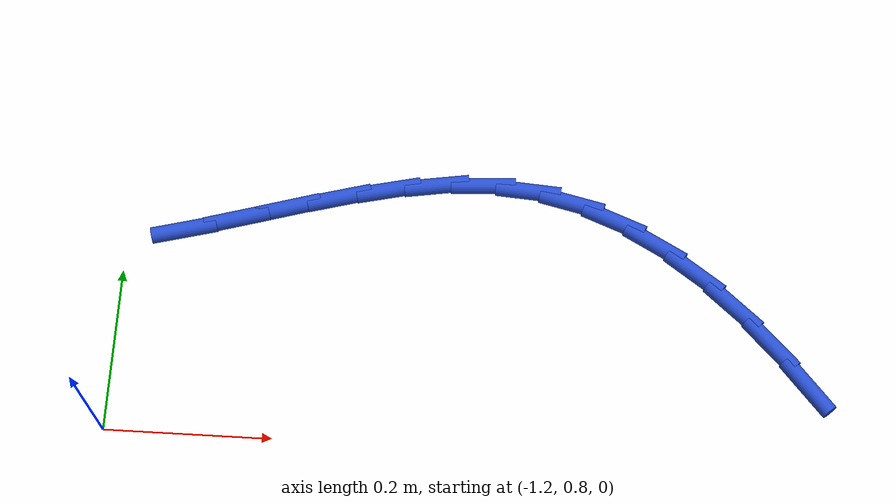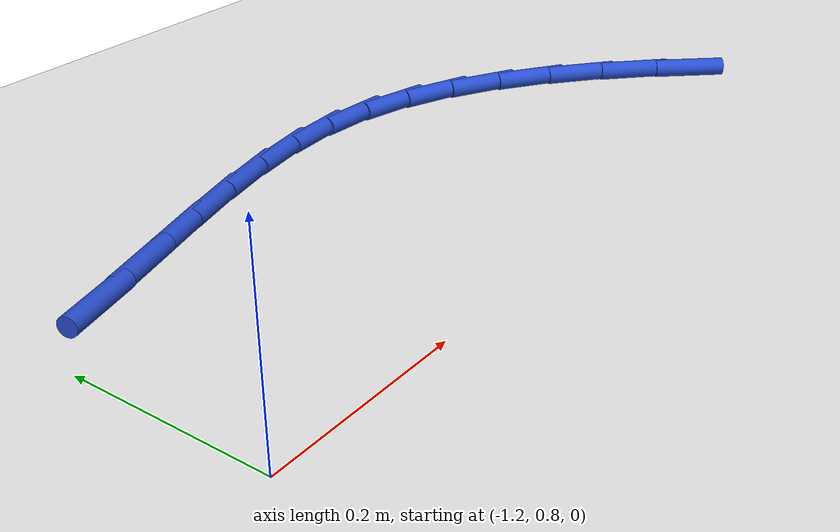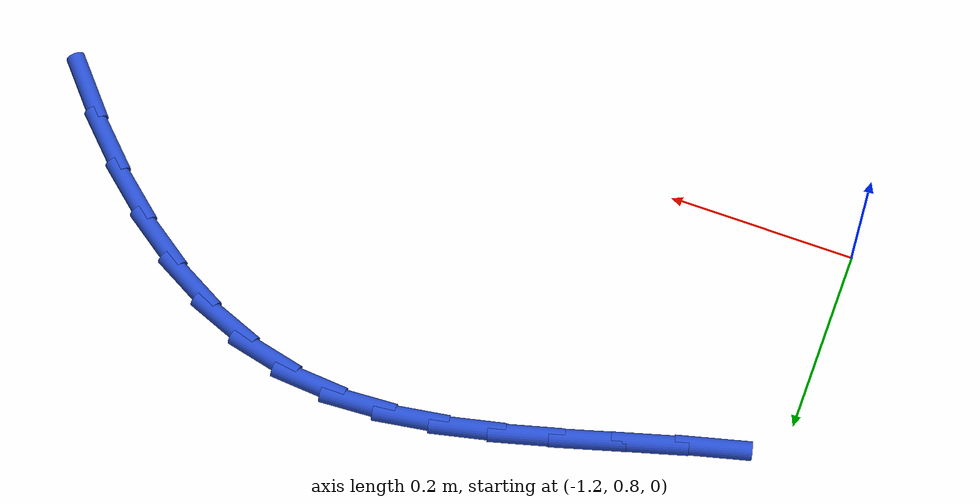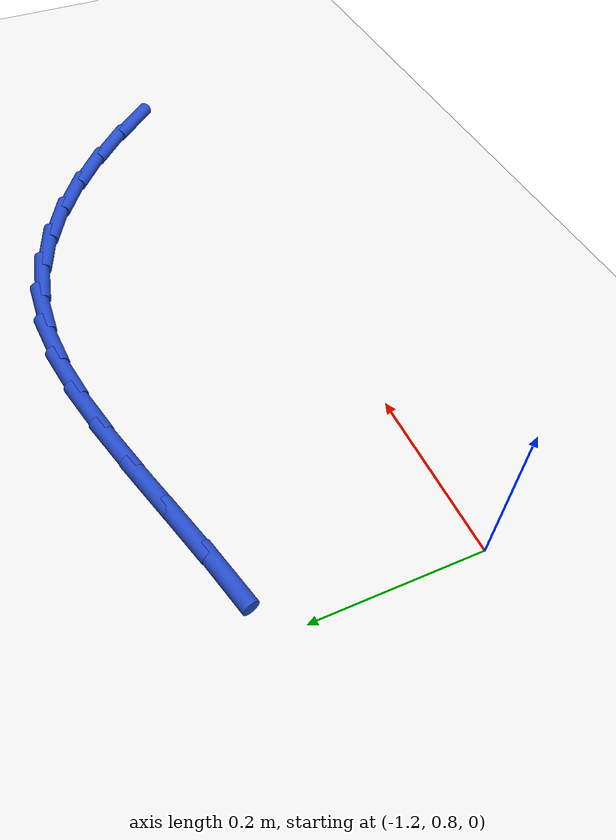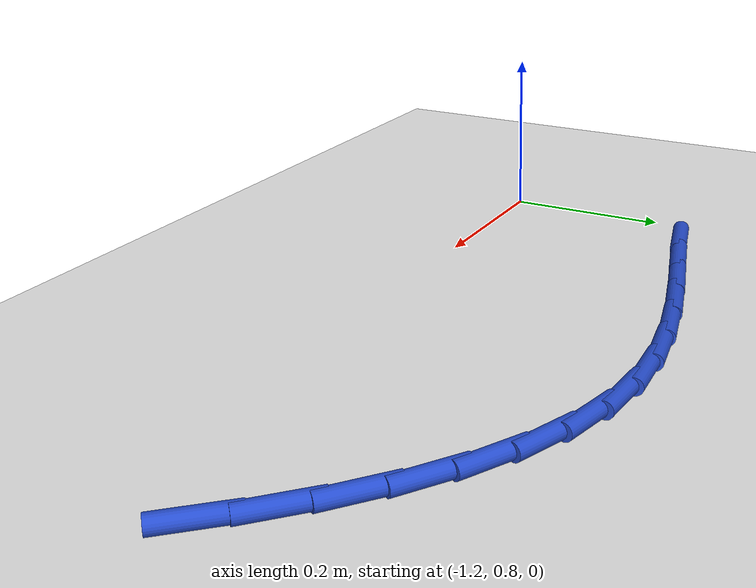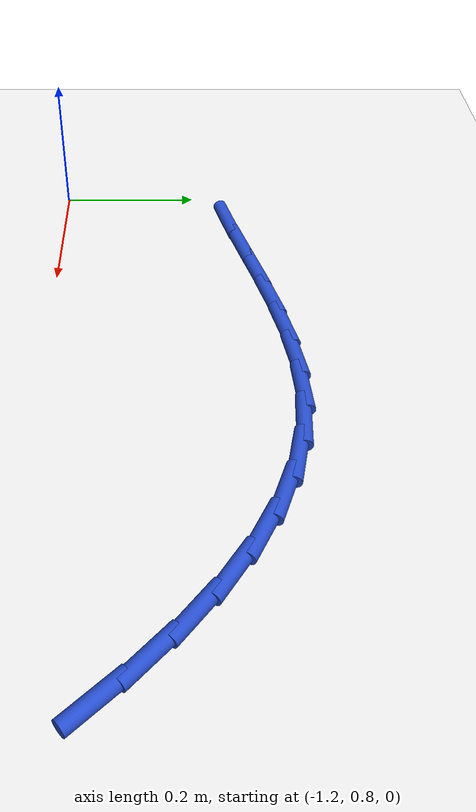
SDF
<sdf version="1.6">
 <world name="default">
  <model name="ground_plane">
   <static>1</static>
   <link name="link">
    <collision name="collision">
     <geometry><plane><normal>0 0 1</normal><size>100 100</size></plane></geometry>
     <surface><friction><ode><mu>100</mu><mu2>50</mu2></ode></friction></surface>
    </collision>
    <visual name="visual">
     <cast_shadows>0</cast_shadows>
     <geometry><plane><normal>0 0 1</normal><size>100 100</size></plane></geometry>
     <material>
      <script><uri>file://media/materials/scripts/gazebo.material</uri><name>Gazebo/WhiteGlow</name></script>
     </material>
    </visual>
   </link>
  </model>
  <model name="line">
   <link name="link_15">
    <pose>-0.3725361967793661 0.8973352137619303 0.01 0 1.57 -0.856332206175863</pose>
    <collision name="collision">
     <geometry><cylinder><radius>0.01</radius><length>0.08</length></cylinder></geometry>
    </collision>
    <visual name="visual">
     <material>
      <script><name>Gazebo/Blue</name><uri>file://media/materials/scripts/gazebo.material</uri></script>
     </material>
     <geometry><cylinder><radius>0.01</radius><length>0.08</length></cylinder></geometry>
    </visual>
   </link>
   <link name="link_16">
    <pose>-0.4159608381580379 0.9474027807903416 0.01 0 1.57 -0.7886264838940608</pose>
    <collision name="collision">
     <geometry><cylinder><radius>0.01</radius><length>0.08</length></cylinder></geometry>
    </collision>
    <visual name="visual">
     <material>
      <script><name>Gazebo/Blue</name><uri>file://media/materials/scripts/gazebo.material</uri></script>
     </material>
     <geometry><cylinder><radius>0.01</radius><length>0.08</length></cylinder></geometry>
    </visual>
   </link>
   <link name="link_17">
    <pose>-0.4612695922058198 0.9930050256990153 0.01 0 1.57 -0.7088371595639255</pose>
    <collision name="collision">
     <geometry><cylinder><radius>0.01</radius><length>0.08</length></cylinder></geometry>
    </collision>
    <visual name="visual">
     <material>
      <script><name>Gazebo/Blue</name><uri>file://media/materials/scripts/gazebo.material</uri></script>
     </material>
     <geometry><cylinder><radius>0.01</radius><length>0.08</length></cylinder></geometry>
    </visual>
   </link>
   <link name="link_18">
    <pose>-0.5084122986837749 1.0334303089286028 0.01 0 1.57 -0.61466745349603</pose>
    <collision name="collision">
     <geometry><cylinder><radius>0.01</radius><length>0.08</length></cylinder></geometry>
    </collision>
    <visual name="visual">
     <material>
      <script><name>Gazebo/Blue</name><uri>file://media/materials/scripts/gazebo.material</uri></script>
     </material>
     <geometry><cylinder><radius>0.01</radius><length>0.08</length></cylinder></geometry>
    </visual>
   </link>
   <link name="link_19">
    <pose>-0.5573387973529673 1.0679669909197569 0.01 0 1.57 -0.5039544434731019</pose>
    <collision name="collision">
     <geometry><cylinder><radius>0.01</radius><length>0.08</length></cylinder></geometry>
    </collision>
    <visual name="visual">
     <material>
      <script><name>Gazebo/Blue</name><uri>file://media/materials/scripts/gazebo.material</uri></script>
     </material>
     <geometry><cylinder><radius>0.01</radius><length>0.08</length></cylinder></geometry>
    </visual>
   </link>
   <link name="link_20">
    <pose>-0.60799892797446 1.0959034321131291 0.01 0 1.57 -0.3753428249880691</pose>
    <collision name="collision">
     <geometry><cylinder><radius>0.01</radius><length>0.08</length></cylinder></geometry>
    </collision>
    <visual name="visual">
     <material>
      <script><name>Gazebo/Blue</name><uri>file://media/materials/scripts/gazebo.material</uri></script>
     </material>
     <geometry><cylinder><radius>0.01</radius><length>0.08</length></cylinder></geometry>
    </visual>
   </link>
   <link name="link_21">
    <pose>-0.6603425303093169 1.116527992949372 0.01 0 1.57 -0.22934486403365015</pose>
    <collision name="collision">
     <geometry><cylinder><radius>0.01</radius><length>0.08</length></cylinder></geometry>
    </collision>
    <visual name="visual">
     <material>
      <script><name>Gazebo/Blue</name><uri>file://media/materials/scripts/gazebo.material</uri></script>
     </material>
     <geometry><cylinder><radius>0.01</radius><length>0.08</length></cylinder></geometry>
    </visual>
   </link>
   <link name="link_22">
    <pose>-0.7143194441186015 1.1291290338691375 0.01 0 1.57 -0.07447289426528925</pose>
    <collision name="collision">
     <geometry><cylinder><radius>0.01</radius><length>0.08</length></cylinder></geometry>
    </collision>
    <visual name="visual">
     <material>
      <script><name>Gazebo/Blue</name><uri>file://media/materials/scripts/gazebo.material</uri></script>
     </material>
     <geometry><cylinder><radius>0.01</radius><length>0.08</length></cylinder></geometry>
    </visual>
   </link>
   <link name="link_23">
    <pose>-0.7698721485995151 1.133273870104323 0.01 0 1.57 0.057645124639538754</pose>
    <collision name="collision">
     <geometry><cylinder><radius>0.01</radius><length>0.08</length></cylinder></geometry>
    </collision>
    <visual name="visual">
     <material>
      <script><name>Gazebo/Blue</name><uri>file://media/materials/scripts/gazebo.material</uri></script>
     </material>
     <geometry><cylinder><radius>0.01</radius><length>0.08</length></cylinder></geometry>
    </visual>
   </link>
   <link name="link_24">
    <pose>-0.8269047902805061 1.1299825699381947 0.01 0 1.57 0.1568395653926029</pose>
    <collision name="collision">
     <geometry><cylinder><radius>0.01</radius><length>0.08</length></cylinder></geometry>
    </collision>
    <visual name="visual">
     <material>
      <script><name>Gazebo/Blue</name><uri>file://media/materials/scripts/gazebo.material</uri></script>
     </material>
     <geometry><cylinder><radius>0.01</radius><length>0.08</length></cylinder></geometry>
    </visual>
   </link>
   <link name="link_25">
    <pose>-0.8853090769554179 1.120746611817679 0.01 0 1.57 0.2255165459518992</pose>
    <collision name="collision">
     <geometry><cylinder><radius>0.01</radius><length>0.08</length></cylinder></geometry>
    </collision>
    <visual name="visual">
     <material>
      <script><name>Gazebo/Blue</name><uri>file://media/materials/scripts/gazebo.material</uri></script>
     </material>
     <geometry><cylinder><radius>0.01</radius><length>0.08</length></cylinder></geometry>
    </visual>
   </link>
   <link name="link_26">
    <pose>-0.9449767099111352 1.1070577207940757 0.01 0 1.57 0.2672020436715021</pose>
    <collision name="collision">
     <geometry><cylinder><radius>0.01</radius><length>0.08</length></cylinder></geometry>
    </collision>
    <visual name="visual">
     <material>
      <script><name>Gazebo/Blue</name><uri>file://media/materials/scripts/gazebo.material</uri></script>
     </material>
     <geometry><cylinder><radius>0.01</radius><length>0.08</length></cylinder></geometry>
    </visual>
   </link>
   <link name="link_27">
    <pose>-1.0057993904345448 1.0904076219186876 0.01 0 1.57 0.2849009840043784</pose>
    <collision name="collision">
     <geometry><cylinder><radius>0.01</radius><length>0.08</length></cylinder></geometry>
    </collision>
    <visual name="visual">
     <material>
      <script><name>Gazebo/Blue</name><uri>file://media/materials/scripts/gazebo.material</uri></script>
     </material>
     <geometry><cylinder><radius>0.01</radius><length>0.08</length></cylinder></geometry>
    </visual>
   </link>
   <link name="link_28">
    <pose>-1.0676688198125304 1.072288040242815 0.01 0 1.57 0.28053905277117747</pose>
    <collision name="collision">
     <geometry><cylinder><radius>0.01</radius><length>0.08</length></cylinder></geometry>
    </collision>
    <visual name="visual">
     <material>
      <script><name>Gazebo/Blue</name><uri>file://media/materials/scripts/gazebo.material</uri></script>
     </material>
     <geometry><cylinder><radius>0.01</radius><length>0.08</length></cylinder></geometry>
    </visual>
   </link>
   <link name="link_29">
    <pose>-1.1304766993319784 1.0541907008177602 0.01 0 1.57 0.254919702908719</pose>
    <collision name="collision">
     <geometry><cylinder><radius>0.01</radius><length>0.08</length></cylinder></geometry>
    </collision>
    <visual name="visual">
     <material>
      <script><name>Gazebo/Blue</name><uri>file://media/materials/scripts/gazebo.material</uri></script>
     </material>
     <geometry><cylinder><radius>0.01</radius><length>0.08</length></cylinder></geometry>
    </visual>
   </link>
  </model>
 </world>
</sdf>
